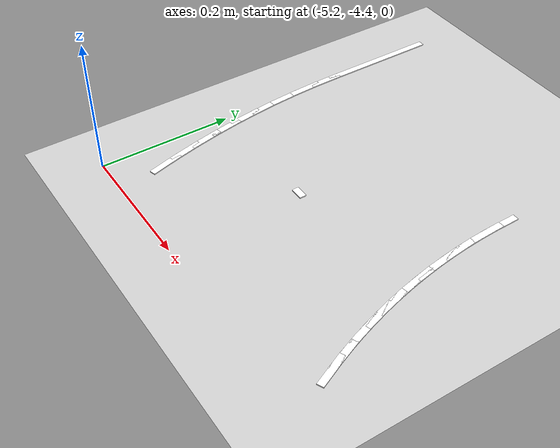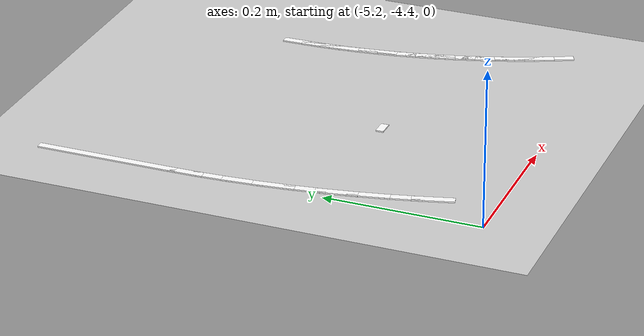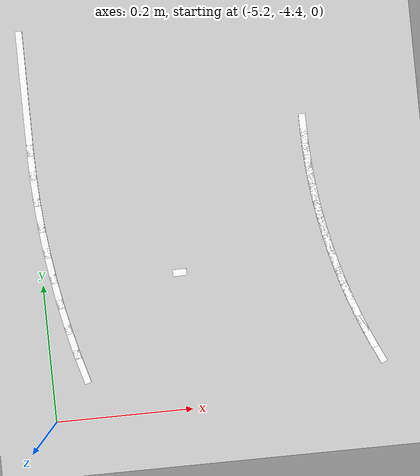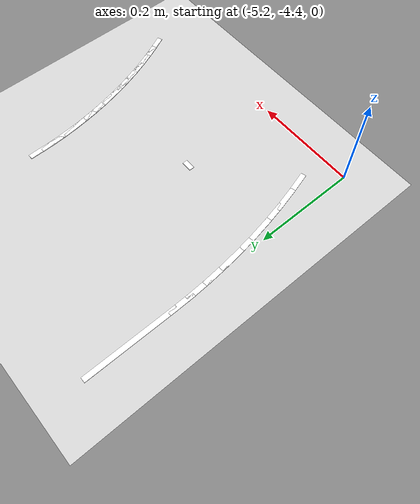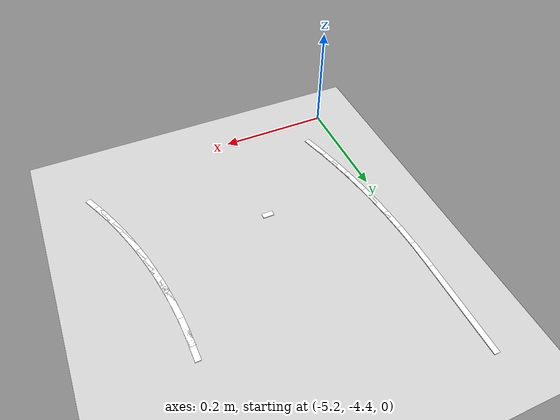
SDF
<sdf version="1.7">
 <world name="default">
  <model name="ground_plane">
   <static>1</static>
   <link name="link">
    <collision name="collision">
     <geometry><plane><normal>0 0 1</normal><size>100 100</size></plane></geometry>
     <surface>
      <contact><collide_bitmask>65535</collide_bitmask></contact>
      <friction><ode><mu>100</mu><mu2>50</mu2></ode></friction>
     </surface>
    </collision>
    <visual name="visual">
     <cast_shadows>0</cast_shadows>
     <geometry><plane><normal>0 0 1</normal><size>100 100</size></plane></geometry>
     <material>
      <script><uri>file://media/materials/scripts/gazebo.material</uri><name>Gazebo/Grey</name></script>
     </material>
    </visual>
   </link>
  </model>
  <model name="lane_line_right_348">
   <static>1</static>
   <link name="link">
    <pose>0 0 -0.004 0 -0 0</pose>
    <visual name="visual">
     <geometry><box><size>0.1833 0.01 0.01</size></box></geometry>
     <material><ambient>1 1 1 1</ambient><diffuse>1 1 1 1</diffuse></material>
    </visual>
    <collision name="collision"><geometry><box><size>0.1833 0.01 0.01</size></box></geometry></collision>
   </link>
   <pose>-5.2 -3.91837 0 0 0 -1.5708</pose>
  </model>
  <model name="lane_line_right_349">
   <static>1</static>
   <link name="link">
    <pose>0 0 -0.004 0 -0 0</pose>
    <visual name="visual">
     <geometry><box><size>0.02 0.01 0.01</size></box></geometry>
     <material><ambient>1 1 1 1</ambient><diffuse>1 1 1 1</diffuse></material>
    </visual>
    <collision name="collision"><geometry><box><size>0.02 0.01 0.01</size></box></geometry></collision>
   </link>
   <pose>-5 -4.2 0 0 -0 0</pose>
  </model>
  <model name="lane_line_left_350">
   <static>1</static>
   <link name="link">
    <pose>0 0 -0.004 0 -0 0</pose>
    <visual name="visual">
     <geometry><box><size>0.0521 0.01 0.01</size></box></geometry>
     <material><ambient>1 1 1 1</ambient><diffuse>1 1 1 1</diffuse></material>
    </visual>
    <collision name="collision"><geometry><box><size>0.0521 0.01 0.01</size></box></geometry></collision>
   </link>
   <pose>-4.79977 -4.01282 0 0 0 -1.55477</pose>
  </model>
  <model name="lane_line_right_350">
   <static>1</static>
   <link name="link">
    <pose>0 0 -0.004 0 -0 0</pose>
    <visual name="visual">
     <geometry><box><size>0.0521 0.01 0.01</size></box></geometry>
     <material><ambient>1 1 1 1</ambient><diffuse>1 1 1 1</diffuse></material>
    </visual>
    <collision name="collision"><geometry><box><size>0.0521 0.01 0.01</size></box></geometry></collision>
   </link>
   <pose>-5.19972 -4.01923 0 0 0 -1.55477</pose>
  </model>
  <model name="lane_line_left_351">
   <static>1</static>
   <link name="link">
    <pose>0 0 -0.004 0 -0 0</pose>
    <visual name="visual">
     <geometry><box><size>0.0521 0.01 0.01</size></box></geometry>
     <material><ambient>1 1 1 1</ambient><diffuse>1 1 1 1</diffuse></material>
    </visual>
    <collision name="collision"><geometry><box><size>0.0521 0.01 0.01</size></box></geometry></collision>
   </link>
   <pose>-4.79895 -4.03845 0 0 0 -1.52271</pose>
  </model>
  <model name="lane_line_right_351">
   <static>1</static>
   <link name="link">
    <pose>0 0 -0.004 0 -0 0</pose>
    <visual name="visual">
     <geometry><box><size>0.0521 0.01 0.01</size></box></geometry>
     <material><ambient>1 1 1 1</ambient><diffuse>1 1 1 1</diffuse></material>
    </visual>
    <collision name="collision"><geometry><box><size>0.0521 0.01 0.01</size></box></geometry></collision>
   </link>
   <pose>-5.19848 -4.05767 0 0 0 -1.52271</pose>
  </model>
  <model name="lane_line_left_352">
   <static>1</static>
   <link name="link">
    <pose>0 0 -0.004 0 -0 0</pose>
    <visual name="visual">
     <geometry><box><size>0.0521 0.01 0.01</size></box></geometry>
     <material><ambient>1 1 1 1</ambient><diffuse>1 1 1 1</diffuse></material>
    </visual>
    <collision name="collision"><geometry><box><size>0.0521 0.01 0.01</size></box></geometry></collision>
   </link>
   <pose>-4.7973 -4.06404 0 0 0 -1.49065</pose>
  </model>
  <model name="lane_line_right_352">
   <static>1</static>
   <link name="link">
    <pose>0 0 -0.004 0 -0 0</pose>
    <visual name="visual">
     <geometry><box><size>0.0521 0.01 0.01</size></box></geometry>
     <material><ambient>1 1 1 1</ambient><diffuse>1 1 1 1</diffuse></material>
    </visual>
    <collision name="collision"><geometry><box><size>0.0521 0.01 0.01</size></box></geometry></collision>
   </link>
   <pose>-5.19602 -4.09606 0 0 0 -1.49065</pose>
  </model>
  <model name="lane_line_left_353">
   <static>1</static>
   <link name="link">
    <pose>0 0 -0.004 0 -0 0</pose>
    <visual name="visual">
     <geometry><box><size>0.0521 0.01 0.01</size></box></geometry>
     <material><ambient>1 1 1 1</ambient><diffuse>1 1 1 1</diffuse></material>
    </visual>
    <collision name="collision"><geometry><box><size>0.0521 0.01 0.01</size></box></geometry></collision>
   </link>
   <pose>-4.79484 -4.08956 0 0 0 -1.4586</pose>
  </model>
  <model name="lane_line_right_353">
   <static>1</static>
   <link name="link">
    <pose>0 0 -0.004 0 -0 0</pose>
    <visual name="visual">
     <geometry><box><size>0.0521 0.01 0.01</size></box></geometry>
     <material><ambient>1 1 1 1</ambient><diffuse>1 1 1 1</diffuse></material>
    </visual>
    <collision name="collision"><geometry><box><size>0.0521 0.01 0.01</size></box></geometry></collision>
   </link>
   <pose>-5.19233 -4.13434 0 0 0 -1.4586</pose>
  </model>
  <model name="lane_line_left_354">
   <static>1</static>
   <link name="link">
    <pose>0 0 -0.004 0 -0 0</pose>
    <visual name="visual">
     <geometry><box><size>0.0521 0.01 0.01</size></box></geometry>
     <material><ambient>1 1 1 1</ambient><diffuse>1 1 1 1</diffuse></material>
    </visual>
    <collision name="collision"><geometry><box><size>0.0521 0.01 0.01</size></box></geometry></collision>
   </link>
   <pose>-4.79156 -4.11499 0 0 0 -1.42654</pose>
  </model>
  <model name="lane_line_right_354">
   <static>1</static>
   <link name="link">
    <pose>0 0 -0.004 0 -0 0</pose>
    <visual name="visual">
     <geometry><box><size>0.0521 0.01 0.01</size></box></geometry>
     <material><ambient>1 1 1 1</ambient><diffuse>1 1 1 1</diffuse></material>
    </visual>
    <collision name="collision"><geometry><box><size>0.0521 0.01 0.01</size></box></geometry></collision>
   </link>
   <pose>-5.18741 -4.17249 0 0 0 -1.42654</pose>
  </model>
  <model name="lane_line_left_355">
   <static>1</static>
   <link name="link">
    <pose>0 0 -0.004 0 -0 0</pose>
    <visual name="visual">
     <geometry><box><size>0.0521 0.01 0.01</size></box></geometry>
     <material><ambient>1 1 1 1</ambient><diffuse>1 1 1 1</diffuse></material>
    </visual>
    <collision name="collision"><geometry><box><size>0.0521 0.01 0.01</size></box></geometry></collision>
   </link>
   <pose>-4.78747 -4.1403 0 0 0 -1.39448</pose>
  </model>
  <model name="lane_line_right_355">
   <static>1</static>
   <link name="link">
    <pose>0 0 -0.004 0 -0 0</pose>
    <visual name="visual">
     <geometry><box><size>0.0521 0.01 0.01</size></box></geometry>
     <material><ambient>1 1 1 1</ambient><diffuse>1 1 1 1</diffuse></material>
    </visual>
    <collision name="collision"><geometry><box><size>0.0521 0.01 0.01</size></box></geometry></collision>
   </link>
   <pose>-5.18127 -4.21046 0 0 0 -1.39448</pose>
  </model>
  <model name="lane_line_left_356">
   <static>1</static>
   <link name="link">
    <pose>0 0 -0.004 0 -0 0</pose>
    <visual name="visual">
     <geometry><box><size>0.0521 0.01 0.01</size></box></geometry>
     <material><ambient>1 1 1 1</ambient><diffuse>1 1 1 1</diffuse></material>
    </visual>
    <collision name="collision"><geometry><box><size>0.0521 0.01 0.01</size></box></geometry></collision>
   </link>
   <pose>-4.78257 -4.16547 0 0 0 -1.36243</pose>
  </model>
  <model name="lane_line_right_356">
   <static>1</static>
   <link name="link">
    <pose>0 0 -0.004 0 -0 0</pose>
    <visual name="visual">
     <geometry><box><size>0.0521 0.01 0.01</size></box></geometry>
     <material><ambient>1 1 1 1</ambient><diffuse>1 1 1 1</diffuse></material>
    </visual>
    <collision name="collision"><geometry><box><size>0.0521 0.01 0.01</size></box></geometry></collision>
   </link>
   <pose>-5.17392 -4.24821 0 0 0 -1.36243</pose>
  </model>
  <model name="lane_line_left_357">
   <static>1</static>
   <link name="link">
    <pose>0 0 -0.004 0 -0 0</pose>
    <visual name="visual">
     <geometry><box><size>0.0521 0.01 0.01</size></box></geometry>
     <material><ambient>1 1 1 1</ambient><diffuse>1 1 1 1</diffuse></material>
    </visual>
    <collision name="collision"><geometry><box><size>0.0521 0.01 0.01</size></box></geometry></collision>
   </link>
   <pose>-4.77686 -4.19046 0 0 0 -1.33037</pose>
  </model>
  <model name="lane_line_right_357">
   <static>1</static>
   <link name="link">
    <pose>0 0 -0.004 0 -0 0</pose>
    <visual name="visual">
     <geometry><box><size>0.0521 0.01 0.01</size></box></geometry>
     <material><ambient>1 1 1 1</ambient><diffuse>1 1 1 1</diffuse></material>
    </visual>
    <collision name="collision"><geometry><box><size>0.0521 0.01 0.01</size></box></geometry></collision>
   </link>
   <pose>-5.16536 -4.28571 0 0 0 -1.33037</pose>
  </model>
  <model name="lane_line_left_358">
   <static>1</static>
   <link name="link">
    <pose>0 0 -0.004 0 -0 0</pose>
    <visual name="visual">
     <geometry><box><size>0.0521 0.01 0.01</size></box></geometry>
     <material><ambient>1 1 1 1</ambient><diffuse>1 1 1 1</diffuse></material>
    </visual>
    <collision name="collision"><geometry><box><size>0.0521 0.01 0.01</size></box></geometry></collision>
   </link>
   <pose>-4.77036 -4.21527 0 0 0 -1.29831</pose>
  </model>
  <model name="lane_line_right_358">
   <static>1</static>
   <link name="link">
    <pose>0 0 -0.004 0 -0 0</pose>
    <visual name="visual">
     <geometry><box><size>0.0521 0.01 0.01</size></box></geometry>
     <material><ambient>1 1 1 1</ambient><diffuse>1 1 1 1</diffuse></material>
    </visual>
    <collision name="collision"><geometry><box><size>0.0521 0.01 0.01</size></box></geometry></collision>
   </link>
   <pose>-5.1556 -4.32292 0 0 0 -1.29831</pose>
  </model>
  <model name="lane_line_left_359">
   <static>1</static>
   <link name="link">
    <pose>0 0 -0.004 0 -0 0</pose>
    <visual name="visual">
     <geometry><box><size>0.0521 0.01 0.01</size></box></geometry>
     <material><ambient>1 1 1 1</ambient><diffuse>1 1 1 1</diffuse></material>
    </visual>
    <collision name="collision"><geometry><box><size>0.0521 0.01 0.01</size></box></geometry></collision>
   </link>
   <pose>-4.76306 -4.23985 0 0 0 -1.26625</pose>
  </model>
  <model name="lane_line_left_360">
   <static>1</static>
   <link name="link">
    <pose>0 0 -0.004 0 -0 0</pose>
    <visual name="visual">
     <geometry><box><size>0.0521 0.01 0.01</size></box></geometry>
     <material><ambient>1 1 1 1</ambient><diffuse>1 1 1 1</diffuse></material>
    </visual>
    <collision name="collision"><geometry><box><size>0.0521 0.01 0.01</size></box></geometry></collision>
   </link>
   <pose>-4.75499 -4.26418 0 0 0 -1.2342</pose>
  </model>
  <model name="lane_line_left_361">
   <static>1</static>
   <link name="link">
    <pose>0 0 -0.004 0 -0 0</pose>
    <visual name="visual">
     <geometry><box><size>0.0521 0.01 0.01</size></box></geometry>
     <material><ambient>1 1 1 1</ambient><diffuse>1 1 1 1</diffuse></material>
    </visual>
    <collision name="collision"><geometry><box><size>0.0521 0.01 0.01</size></box></geometry></collision>
   </link>
   <pose>-4.74613 -4.28824 0 0 0 -1.20214</pose>
  </model>
  <model name="lane_line_left_362">
   <static>1</static>
   <link name="link">
    <pose>0 0 -0.004 0 -0 0</pose>
    <visual name="visual">
     <geometry><box><size>0.0521 0.01 0.01</size></box></geometry>
     <material><ambient>1 1 1 1</ambient><diffuse>1 1 1 1</diffuse></material>
    </visual>
    <collision name="collision"><geometry><box><size>0.0521 0.01 0.01</size></box></geometry></collision>
   </link>
   <pose>-4.73651 -4.31201 0 0 0 -1.17008</pose>
  </model>
  <model name="lane_line_left_363">
   <static>1</static>
   <link name="link">
    <pose>0 0 -0.004 0 -0 0</pose>
    <visual name="visual">
     <geometry><box><size>0.0521 0.01 0.01</size></box></geometry>
     <material><ambient>1 1 1 1</ambient><diffuse>1 1 1 1</diffuse></material>
    </visual>
    <collision name="collision"><geometry><box><size>0.0521 0.01 0.01</size></box></geometry></collision>
   </link>
   <pose>-4.72613 -4.33546 0 0 0 -1.13803</pose>
  </model>
 </world>
</sdf>
